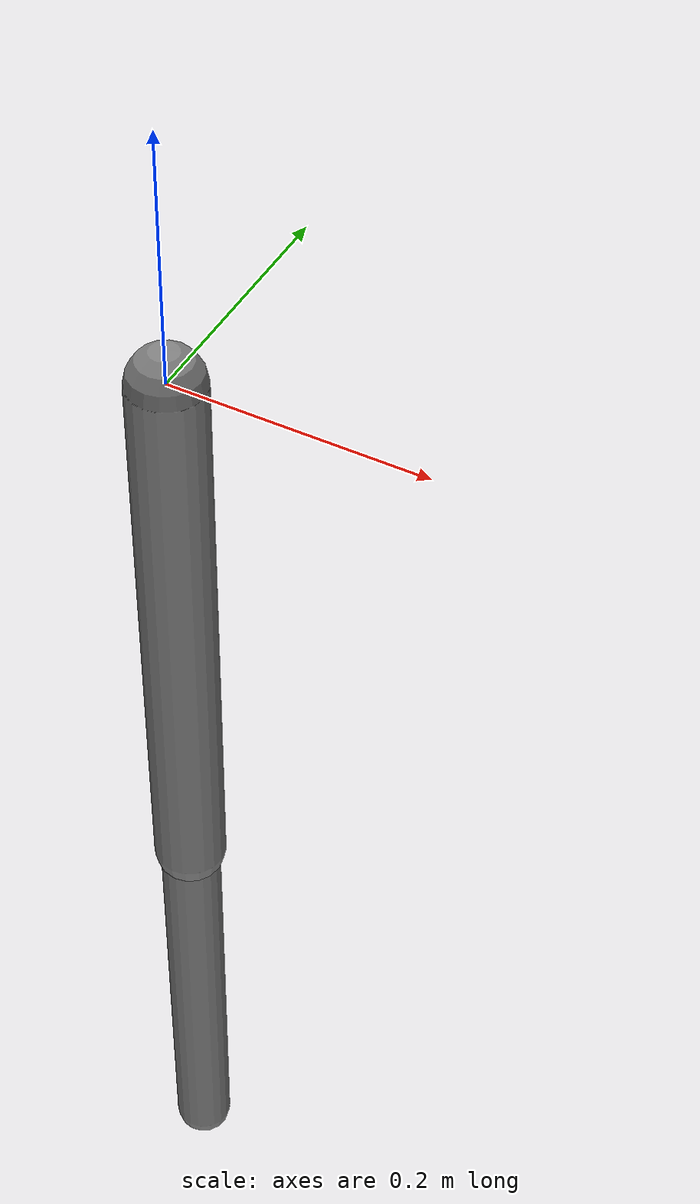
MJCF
<mujoco>
          <option gravity="0 0 0" timestep="0.001"/>
          <worldbody>
            <body name="a" pos="0 0 0">
              <freejoint/>
              <geom type="capsule" fromto="0 0 0 0 0 -0.5" size="0.03" mass="1"/>
            </body>
            <body name="b" pos="0 0 -0.5">
              <freejoint/>
              <geom type="capsule" fromto="0 0 0 0 0 -0.4" size="0.025" mass="0.8"/>
            </body>
          </worldbody>
          <equality>
            <connect body1="a" anchor="0 0 0"/>
            <connect body1="a" body2="b" anchor="0 0 -0.5"/>
          </equality>
        </mujoco>
